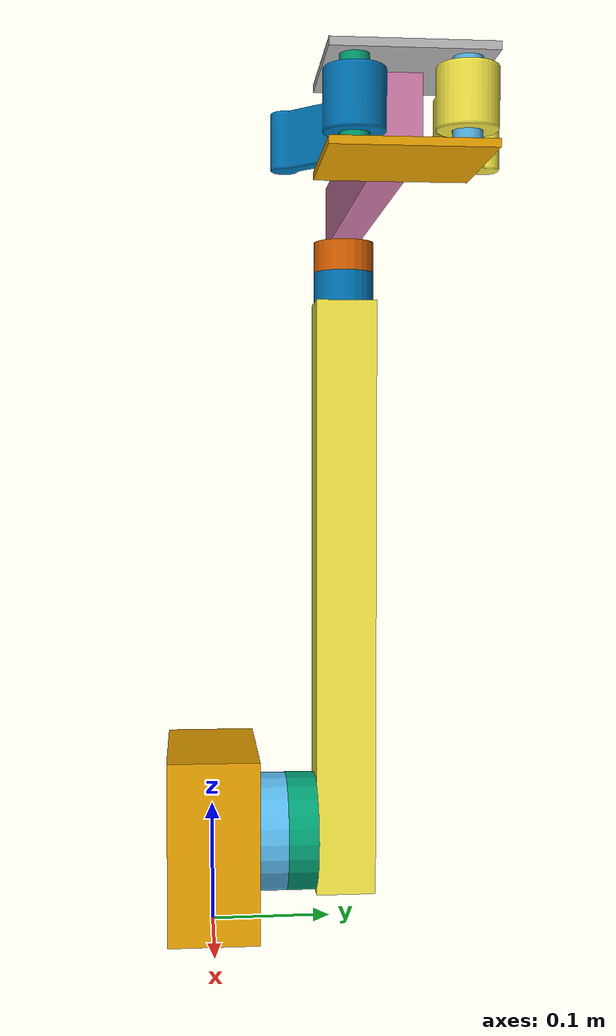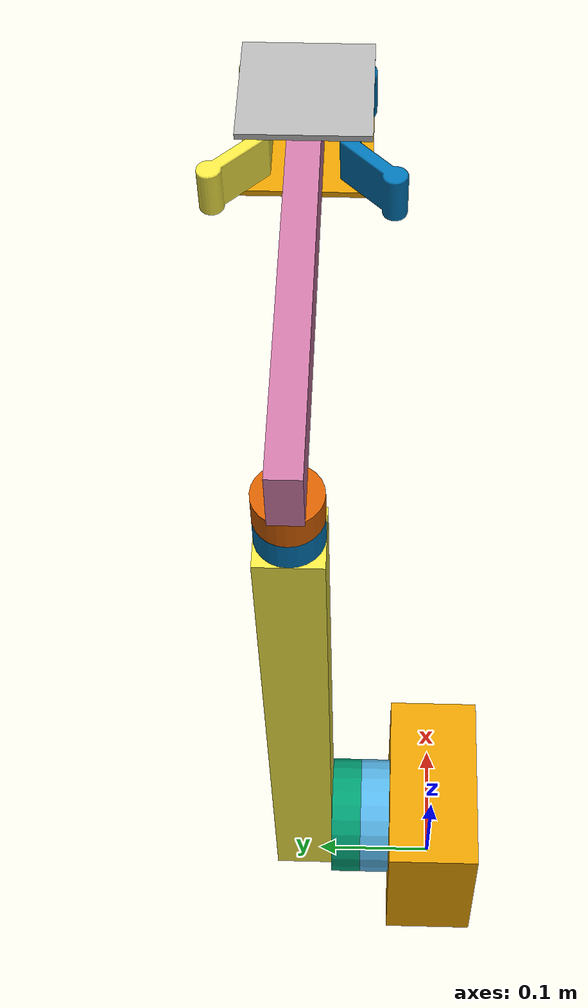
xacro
<?xml version="1.0"?>
<robot xmlns:xacro="http://www.ros.org/wiki/xacro" name="armV1">

    <!--Xacro macro types for easily creating models of cylinders and rectangular prisms-->
    <xacro:macro name="cylinder" params="name orientation radius depth density">
      <link name="${name}">
        <visual>
          <geometry>
            <cylinder length="${depth}" radius="${radius}"/>
          </geometry>
          <origin rpy="${orientation} 0 0" xyz="0 0 0"/>
        </visual>

        <collision>
          <geometry>
            <cylinder length="${depth}" radius="${radius}"/>
          </geometry>
          <origin rpy="${orientation} 0 0" xyz="0 0 0"/>
        </collision>

        <inertial>
          <mass value="${(radius*radius*density)*3.1415}"/>
          <inertia
            ixx="${(((radius*radius*density)*3.1415)/12)*(3*(radius*radius)+(depth*depth))}"
            ixy="0"
            ixz="0"
            iyy="${(((radius*radius*density)*3.1415)/12)*(3*(radius*radius)+(depth*depth))}"
            iyz="0"
            izz="${(((radius*radius*density)*3.1415)/2)*(radius*radius)}"/>
        </inertial>
      </link>
    </xacro:macro>

    <xacro:macro name="box" params="name depth width height density">
      <link name="${name}">
        <visual>
          <geometry>
            <box size="${depth} ${width} ${height}"/>
          </geometry>
          <origin rpy="0 0 0" xyz="0 0 0"/>
        </visual>

        <collision>
          <geometry>
            <box size="${depth} ${width} ${height}"/>
          </geometry>
          <origin rpy="0 0 0" xyz="0 0 0"/>
        </collision>

        <inertial>
          <mass value="${depth*width*height*density}"/>
          <inertia
            ixx="${(depth*width*height*density)/12*((height*height)+(depth*depth))}"
            ixy="0"
            ixz="0"
            iyy="${(depth*width*height*density)/12*((width*width)+(depth*depth))}"
            iyz="0"
            izz="${(depth*width*height*density)/12*((width*width)+(height*height))}"/>
        </inertial>
      </link>
    </xacro:macro>

    <!--control plugin for joints-->
    <gazebo>
      <plugin name="gazebo_ros_control" filename="libgazebo_ros_control.so">
        <robotNamespace>/armV1</robotNamespace>
      </plugin>
    </gazebo>

      <!--links-->
      <xacro:property name="c11Depth" value=".15" />
      <xacro:property name="c11Width" value=".075" />
      <xacro:property name="c11Height" value=".15" />
      <xacro:box name="c11" depth="${c11Depth}" width="${c11Width}" height="${c11Height}" density="10"/>

      <xacro:property name="c12Radius" value=".05" />
      <xacro:property name="c12Depth" value=".025" />
      <xacro:cylinder name="c12" orientation="1.5707" radius="${c12Radius}" depth="${c12Depth}" density="10"/>

      <xacro:property name="c13Radius" value=".05" />
      <xacro:property name="c13Depth" value=".025" />
      <xacro:cylinder name="c13" orientation="1.5707" radius="${c13Radius}" depth="${c13Depth}" density="10"/>

      <xacro:property name="a1Depth" value=".05" />
      <xacro:property name="a1Width" value=".05" />
      <xacro:property name="a1Height" value=".5" />
      <xacro:box name="a1" depth="${a1Depth}" width="${a1Width}" height="${a1Height}" density="10"/>

      <xacro:property name="c21Radius" value=".025" />
      <xacro:property name="c21Depth" value=".025" />
      <xacro:cylinder name="c21" orientation="0" radius="${c21Radius}" depth="${c21Depth}" density="10"/>

      <xacro:property name="c22Radius" value=".025" />
      <xacro:property name="c22Depth" value=".025" />
      <xacro:cylinder name="c22" orientation="0" radius="${c22Radius}" depth="${c22Depth}" density="10"/>

      <xacro:property name="a2Depth" value=".35" />
      <xacro:property name="a2Width" value=".025" />
      <xacro:property name="a2Height" value=".05" />
      <xacro:box name="a2" depth="${a2Depth}" width="${a2Width}" height="${a2Height}" density="10"/>

      <xacro:property name="c31Depth" value=".1" />
      <xacro:property name="c31Width" value=".1" />
      <xacro:property name="c31Height" value=".005" />
      <xacro:box name="c31" depth="${c31Depth}" width="${c31Width}" height="${c31Height}" density="10"/>

      <xacro:property name="c32Depth" value=".1" />
      <xacro:property name="c32Width" value=".1" />
      <xacro:property name="c32Height" value=".005" />
      <xacro:box name="c32" depth="${c32Depth}" width="${c32Width}" height="${c32Height}" density="10"/>

      <xacro:property name="c33Radius" value=".009" />
      <xacro:property name="c33Depth" value=".05" />
      <xacro:cylinder name="c33" orientation="0" radius="${c33Radius}" depth="${c33Depth}" density="10"/>

      <xacro:property name="c34Radius" value=".009" />
      <xacro:property name="c34Depth" value=".05" />
      <xacro:cylinder name="c34" orientation="0" radius="${c34Radius}" depth="${c34Depth}" density="10"/>

      <link name="claw1">
        <visual>
          <geometry>
            <mesh filename="package://learning_robot_control/meshes/gripperV2.dae" scale="0.0075 0.0075 0.0075"/>
          </geometry>
          <origin rpy="1.5707 0 0" xyz="0 0 0"/>
        </visual>

        <collision>
          <geometry>
            <mesh filename="package://learning_robot_control/meshes/gripperV2.dae" scale="0.0075 0.0075 0.0075"/>
          </geometry>
          <origin rpy="1.5707 0 0" xyz="0 0 0"/>
        </collision>

        <inertial>
          <mass value="1"/>
          <inertia
            ixx=".01"
            ixy="0"
            ixz="0"
            iyy=".01"
            iyz="0"
            izz=".01"/>
        </inertial>
      </link>

      <link name="claw2">
        <visual>
          <geometry>
            <mesh filename="package://learning_robot_control/meshes/gripperV2.dae" scale="0.0075 0.0075 0.0075"/>
          </geometry>
          <origin rpy="1.5707 3.1415 3.1415" xyz="0 0 0"/>
        </visual>

        <collision>
          <geometry>
            <mesh filename="package://learning_robot_control/meshes/gripperV2.dae" scale="0.0075 0.0075 0.0075"/>
          </geometry>
          <origin rpy="1.5707 3.1415 3.1415" xyz="0 0 0"/>
        </collision>

        <inertial>
          <mass value="1"/>
          <inertia
            ixx=".01"
            ixy="0"
            ixz="0"
            iyy=".01"
            iyz="0"
            izz=".01"/>
        </inertial>
      </link>

     <link name="world"/>

      <!--Joints-->
      <joint name="c11ToWorldJoint" type="fixed">
        <parent link="world"/>
        <child link="c11"/>
        <origin xyz="0 0 ${c11Height/2}"/>
      </joint>

      <joint name="c12Toc11Joint" type="fixed">
        <parent link="c11"/>
        <child link="c12"/>
        <origin xyz="0 ${c12Depth/2+c11Width/2} 0"/>
      </joint>

      <joint name="c13Toc12Joint" type="continuous">
        <parent link="c12"/>
        <child link="c13"/>
        <axis xyz="0 ${c13Depth} 0"/>
        <origin xyz="0 ${c13Depth} 0"/>
      </joint>

      <joint name="a1Toc13Joint" type="fixed">
        <parent link="c13"/>
        <child link="a1"/>
        <origin xyz="0 ${c13Depth/2+a1Width/2} ${(a1Height/2)-c13Radius}"/>
      </joint>

      <joint name="c21toa1Joint" type="fixed">
        <parent link="a1"/>
        <child link="c21"/>
        <origin xyz="0 0 ${c21Depth/2+a1Height/2}"/>
      </joint>

      <joint name="c22Toc21Joint" type="continuous">
        <parent link="c21"/>
        <child link="c22"/>
        <axis xyz="0 0 ${c22Depth}"/>
        <origin xyz="0 0 ${c22Depth}"/>
      </joint>

      <joint name="a2Toc22Joint" type="fixed">
        <parent link="c22"/>
        <child link="a2"/>
        <origin xyz="${(a2Depth/2)-(c22Radius)} 0 ${(a2Height/2)+(c22Depth/2)}"/>
      </joint>

      <joint name="c31Toa2Joint" type="fixed">
        <parent link="a2"/>
        <child link="c31"/>
        <origin xyz="${a2Depth/2} 0 ${a2Height/2 + c31Height/2}"/>
      </joint>

      <joint name="c32Toa2Joint" type="fixed">
        <parent link="a2"/>
        <child link="c32"/>
        <origin xyz="${a2Depth/2} 0 ${(a2Height/2 + c32Height/2)*-1}"/>
      </joint>

      <joint name="c33Toc32Joint" type="fixed">
        <parent link="c32"/>
        <child link="c33"/>
        <origin xyz="${c32Width/3} ${c32Depth/3} ${c32Height/2 + c33Depth/2}"/>
      </joint>

      <joint name="c34Toc32Joint" type="fixed">
        <parent link="c32"/>
        <child link="c34"/>
        <origin xyz="${c32Width/3} ${c32Depth/-3} ${c32Height/2 + c34Depth/2}"/>
      </joint>

      <joint name="claw1Toc33Joint" type="continuous">
        <parent link="c33"/>
        <child link="claw1"/>
        <axis xyz="0 0 ${(c33Depth/-2) + .0075}"/>
        <origin xyz="0 0 ${(c33Depth/-2) + .0075}"/>
      </joint>

      <joint name="claw2Toc34Joint" type="continuous">
        <parent link="c34"/>
        <child link="claw2"/>
        <axis xyz="0 0 ${(c34Depth/2) - .0075}"/>
        <origin xyz="0 0 ${(c34Depth/2) - .0075}"/>
      </joint>

      <!--Actuators/transmissions for moving joints-->
      <transmission name="c13transmission">
        <type>transmission_interface/SimpleTransmission</type>
          <joint name="c13Toc12Joint">
          <hardwareInterface>hardware_interface/VelocityJointInterface</hardwareInterface>
          </joint>
      <actuator name="c13Motor">
        <hardwareInterface>hardware_interface/VelocityJointInterface</hardwareInterface>
        <mechanicalReduction>1</mechanicalReduction>
      </actuator>
    </transmission>

    <transmission name="c22transmission">
      <type>transmission_interface/SimpleTransmission</type>
        <joint name="c22Toc21Joint">
        <hardwareInterface>hardware_interface/VelocityJointInterface</hardwareInterface>
        </joint>
    <actuator name="c22Motor">
      <hardwareInterface>hardware_interface/VelocityJointInterface</hardwareInterface>
      <mechanicalReduction>1</mechanicalReduction>
    </actuator>
  </transmission>

</robot>
